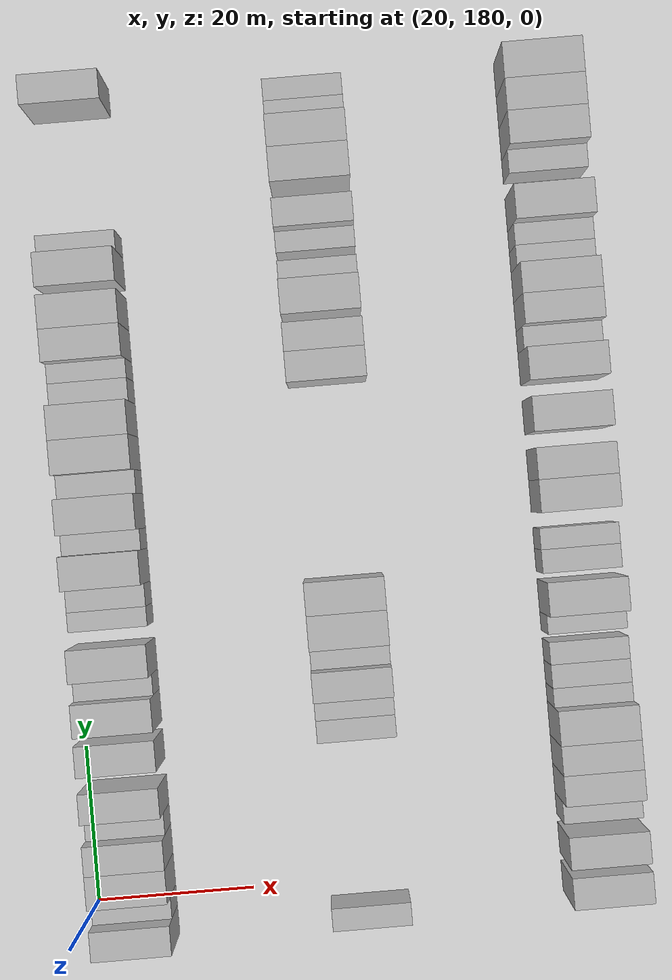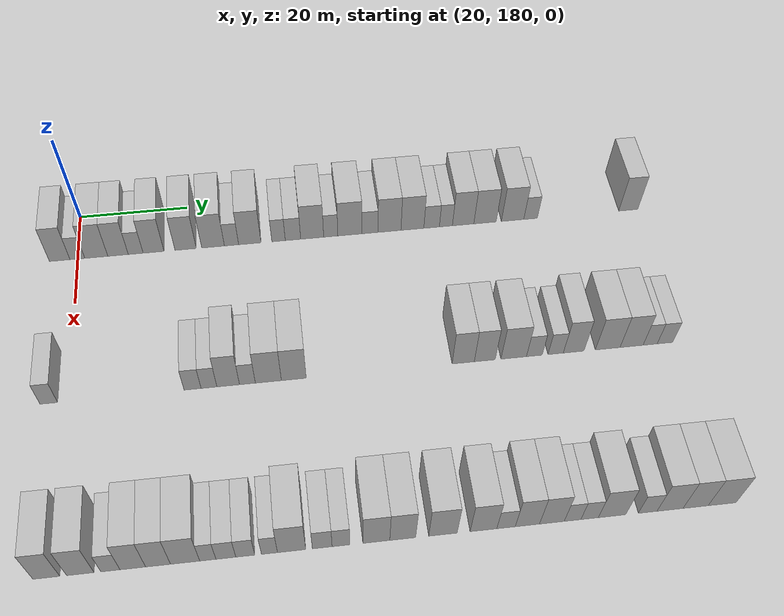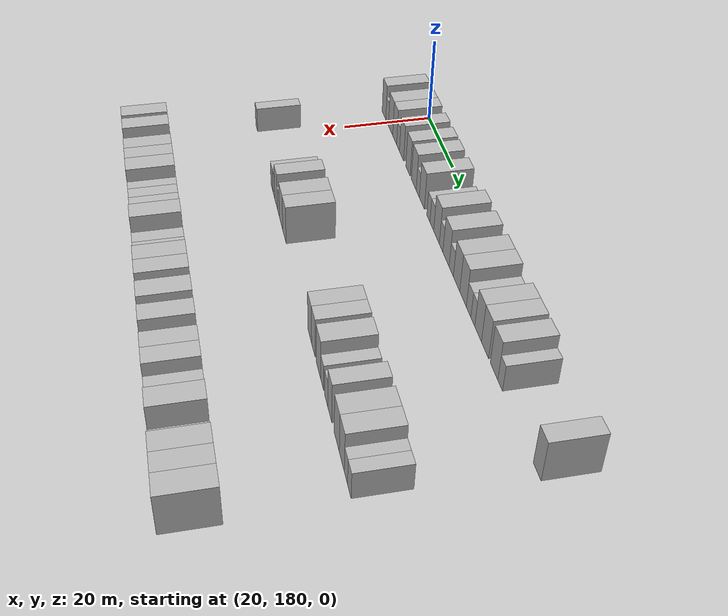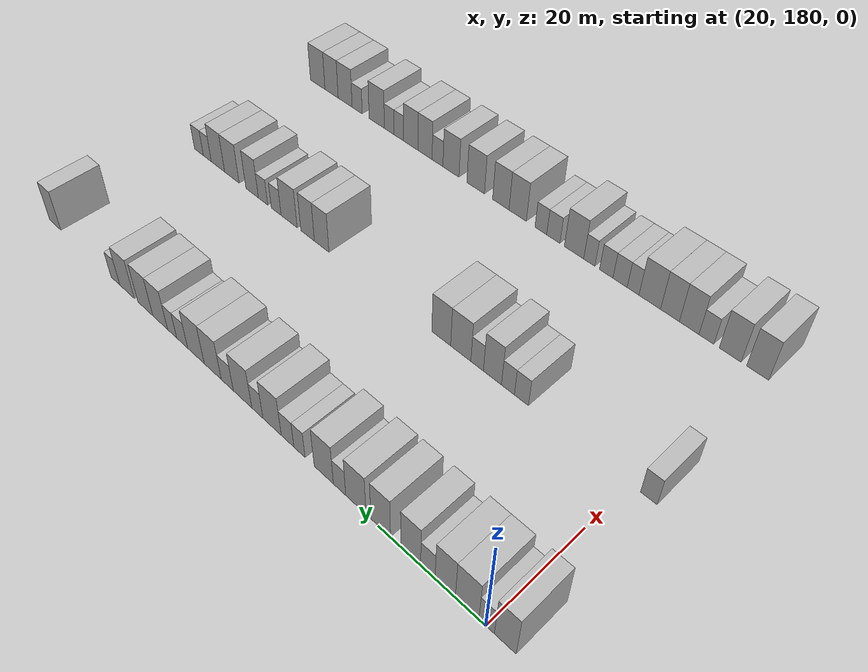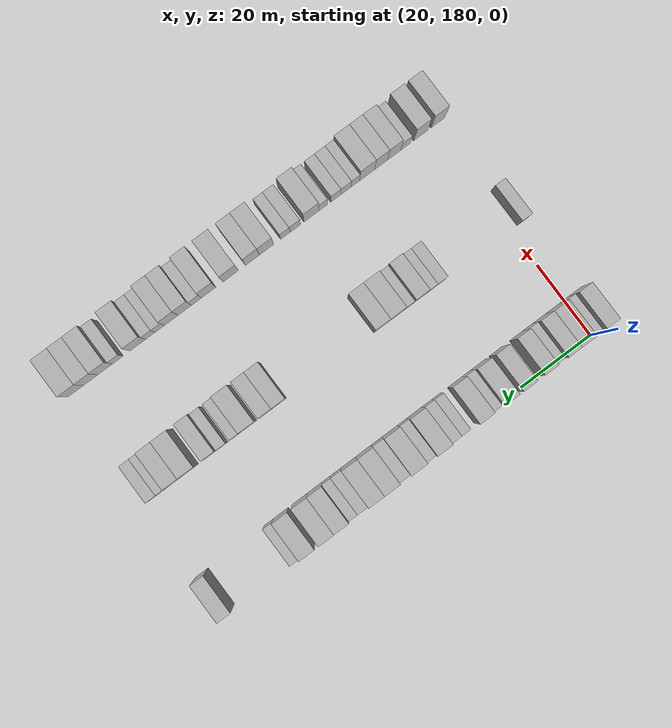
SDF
<sdf version="1.6">
 <world name="default">
  <model name="building_115">
   <static>1</static>
   <pose>25.0000 176.7372 0 0.000000 0.000000 0.000000</pose>
   <link name="link">
    <pose>0 0 4.50 0 0 0</pose>
    <collision name="collision"><geometry><box><size>10.0000 3.7053 9.0000</size></box></geometry></collision>
    <visual name="visual">
     <cast_shadows>0</cast_shadows>
     <geometry><box><size>10.0000 3.7053 9.0000</size></box></geometry>
     <material>
      <script>
       <uri>model://HANNAS_wall/materials/scripts</uri>
       <uri>model://HANNAS_wall/materials/textures</uri>
       <name>vrc/HANNAS_wall</name>
      </script>
     </material>
    </visual>
   </link>
  </model>
  <model name="building_116">
   <static>1</static>
   <pose>25.0000 179.9274 0 0.000000 0.000000 0.000000</pose>
   <link name="link">
    <pose>0 0 3.00 0 0 0</pose>
    <collision name="collision"><geometry><box><size>10.0000 2.6753 6.0000</size></box></geometry></collision>
    <visual name="visual">
     <cast_shadows>0</cast_shadows>
     <geometry><box><size>10.0000 2.6753 6.0000</size></box></geometry>
     <material>
      <script>
       <uri>model://HANNAS_wall/materials/scripts</uri>
       <uri>model://HANNAS_wall/materials/textures</uri>
       <name>vrc/HANNAS_wall</name>
      </script>
     </material>
    </visual>
   </link>
  </model>
  <model name="building_117">
   <static>1</static>
   <pose>25.0000 183.3475 0 0.000000 0.000000 0.000000</pose>
   <link name="link">
    <pose>0 0 4.50 0 0 0</pose>
    <collision name="collision"><geometry><box><size>10.0000 4.1648 9.0000</size></box></geometry></collision>
    <visual name="visual">
     <cast_shadows>0</cast_shadows>
     <geometry><box><size>10.0000 4.1648 9.0000</size></box></geometry>
     <material>
      <script>
       <uri>model://HANNAS_wall/materials/scripts</uri>
       <uri>model://HANNAS_wall/materials/textures</uri>
       <name>vrc/HANNAS_wall</name>
      </script>
     </material>
    </visual>
   </link>
  </model>
  <model name="building_118">
   <static>1</static>
   <pose>25.0000 187.2790 0 0.000000 0.000000 0.000000</pose>
   <link name="link">
    <pose>0 0 4.50 0 0 0</pose>
    <collision name="collision"><geometry><box><size>10.0000 3.6982 9.0000</size></box></geometry></collision>
    <visual name="visual">
     <cast_shadows>0</cast_shadows>
     <geometry><box><size>10.0000 3.6982 9.0000</size></box></geometry>
     <material>
      <script>
       <uri>model://HANNAS_wall/materials/scripts</uri>
       <uri>model://HANNAS_wall/materials/textures</uri>
       <name>vrc/HANNAS_wall</name>
      </script>
     </material>
    </visual>
   </link>
  </model>
  <model name="building_119">
   <static>1</static>
   <pose>25.0000 190.4783 0 0.000000 0.000000 0.000000</pose>
   <link name="link">
    <pose>0 0 3.00 0 0 0</pose>
    <collision name="collision"><geometry><box><size>10.0000 2.7004 6.0000</size></box></geometry></collision>
    <visual name="visual">
     <cast_shadows>0</cast_shadows>
     <geometry><box><size>10.0000 2.7004 6.0000</size></box></geometry>
     <material>
      <script>
       <uri>model://HANNAS_wall/materials/scripts</uri>
       <uri>model://HANNAS_wall/materials/textures</uri>
       <name>vrc/HANNAS_wall</name>
      </script>
     </material>
    </visual>
   </link>
  </model>
  <model name="building_120">
   <static>1</static>
   <pose>25.0000 193.7305 0 0.000000 0.000000 0.000000</pose>
   <link name="link">
    <pose>0 0 4.50 0 0 0</pose>
    <collision name="collision"><geometry><box><size>10.0000 3.8042 9.0000</size></box></geometry></collision>
    <visual name="visual">
     <cast_shadows>0</cast_shadows>
     <geometry><box><size>10.0000 3.8042 9.0000</size></box></geometry>
     <material>
      <script>
       <uri>model://HANNAS_wall/materials/scripts</uri>
       <uri>model://HANNAS_wall/materials/textures</uri>
       <name>vrc/HANNAS_wall</name>
      </script>
     </material>
    </visual>
   </link>
  </model>
  <model name="building_121">
   <static>1</static>
   <pose>25.0000 199.5805 0 0.000000 0.000000 0.000000</pose>
   <link name="link">
    <pose>0 0 4.50 0 0 0</pose>
    <collision name="collision"><geometry><box><size>10.0000 3.8957 9.0000</size></box></geometry></collision>
    <visual name="visual">
     <cast_shadows>0</cast_shadows>
     <geometry><box><size>10.0000 3.8957 9.0000</size></box></geometry>
     <material>
      <script>
       <uri>model://HANNAS_wall/materials/scripts</uri>
       <uri>model://HANNAS_wall/materials/textures</uri>
       <name>vrc/HANNAS_wall</name>
      </script>
     </material>
    </visual>
   </link>
  </model>
  <model name="building_122">
   <static>1</static>
   <pose>25.0000 204.6065 0 0.000000 0.000000 0.000000</pose>
   <link name="link">
    <pose>0 0 4.50 0 0 0</pose>
    <collision name="collision"><geometry><box><size>10.0000 4.1563 9.0000</size></box></geometry></collision>
    <visual name="visual">
     <cast_shadows>0</cast_shadows>
     <geometry><box><size>10.0000 4.1563 9.0000</size></box></geometry>
     <material>
      <script>
       <uri>model://HANNAS_wall/materials/scripts</uri>
       <uri>model://HANNAS_wall/materials/textures</uri>
       <name>vrc/HANNAS_wall</name>
      </script>
     </material>
    </visual>
   </link>
  </model>
  <model name="building_123">
   <static>1</static>
   <pose>25.0000 207.9919 0 0.000000 0.000000 0.000000</pose>
   <link name="link">
    <pose>0 0 3.00 0 0 0</pose>
    <collision name="collision"><geometry><box><size>10.0000 2.6144 6.0000</size></box></geometry></collision>
    <visual name="visual">
     <cast_shadows>0</cast_shadows>
     <geometry><box><size>10.0000 2.6144 6.0000</size></box></geometry>
     <material>
      <script>
       <uri>model://HANNAS_wall/materials/scripts</uri>
       <uri>model://HANNAS_wall/materials/textures</uri>
       <name>vrc/HANNAS_wall</name>
      </script>
     </material>
    </visual>
   </link>
  </model>
  <model name="building_124">
   <static>1</static>
   <pose>25.0000 211.3640 0 0.000000 0.000000 0.000000</pose>
   <link name="link">
    <pose>0 0 4.50 0 0 0</pose>
    <collision name="collision"><geometry><box><size>10.0000 4.1299 9.0000</size></box></geometry></collision>
    <visual name="visual">
     <cast_shadows>0</cast_shadows>
     <geometry><box><size>10.0000 4.1299 9.0000</size></box></geometry>
     <material>
      <script>
       <uri>model://HANNAS_wall/materials/scripts</uri>
       <uri>model://HANNAS_wall/materials/textures</uri>
       <name>vrc/HANNAS_wall</name>
      </script>
     </material>
    </visual>
   </link>
  </model>
  <model name="building_125">
   <static>1</static>
   <pose>25.0000 216.6712 0 0.000000 0.000000 0.000000</pose>
   <link name="link">
    <pose>0 0 3.00 0 0 0</pose>
    <collision name="collision"><geometry><box><size>10.0000 2.4845 6.0000</size></box></geometry></collision>
    <visual name="visual">
     <cast_shadows>0</cast_shadows>
     <geometry><box><size>10.0000 2.4845 6.0000</size></box></geometry>
     <material>
      <script>
       <uri>model://HANNAS_wall/materials/scripts</uri>
       <uri>model://HANNAS_wall/materials/textures</uri>
       <name>vrc/HANNAS_wall</name>
      </script>
     </material>
    </visual>
   </link>
  </model>
  <model name="building_126">
   <static>1</static>
   <pose>25.0000 219.3397 0 0.000000 0.000000 0.000000</pose>
   <link name="link">
    <pose>0 0 3.00 0 0 0</pose>
    <collision name="collision"><geometry><box><size>10.0000 2.8525 6.0000</size></box></geometry></collision>
    <visual name="visual">
     <cast_shadows>0</cast_shadows>
     <geometry><box><size>10.0000 2.8525 6.0000</size></box></geometry>
     <material>
      <script>
       <uri>model://HANNAS_wall/materials/scripts</uri>
       <uri>model://HANNAS_wall/materials/textures</uri>
       <name>vrc/HANNAS_wall</name>
      </script>
     </material>
    </visual>
   </link>
  </model>
  <model name="building_127">
   <static>1</static>
   <pose>25.0000 222.9014 0 0.000000 0.000000 0.000000</pose>
   <link name="link">
    <pose>0 0 4.50 0 0 0</pose>
    <collision name="collision"><geometry><box><size>10.0000 4.2708 9.0000</size></box></geometry></collision>
    <visual name="visual">
     <cast_shadows>0</cast_shadows>
     <geometry><box><size>10.0000 4.2708 9.0000</size></box></geometry>
     <material>
      <script>
       <uri>model://HANNAS_wall/materials/scripts</uri>
       <uri>model://HANNAS_wall/materials/textures</uri>
       <name>vrc/HANNAS_wall</name>
      </script>
     </material>
    </visual>
   </link>
  </model>
  <model name="building_128">
   <static>1</static>
   <pose>25.0000 226.3530 0 0.000000 0.000000 0.000000</pose>
   <link name="link">
    <pose>0 0 3.00 0 0 0</pose>
    <collision name="collision"><geometry><box><size>10.0000 2.6325 6.0000</size></box></geometry></collision>
    <visual name="visual">
     <cast_shadows>0</cast_shadows>
     <geometry><box><size>10.0000 2.6325 6.0000</size></box></geometry>
     <material>
      <script>
       <uri>model://HANNAS_wall/materials/scripts</uri>
       <uri>model://HANNAS_wall/materials/textures</uri>
       <name>vrc/HANNAS_wall</name>
      </script>
     </material>
    </visual>
   </link>
  </model>
  <model name="building_129">
   <static>1</static>
   <pose>25.0000 229.9183 0 0.000000 0.000000 0.000000</pose>
   <link name="link">
    <pose>0 0 4.50 0 0 0</pose>
    <collision name="collision"><geometry><box><size>10.0000 4.4980 9.0000</size></box></geometry></collision>
    <visual name="visual">
     <cast_shadows>0</cast_shadows>
     <geometry><box><size>10.0000 4.4980 9.0000</size></box></geometry>
     <material>
      <script>
       <uri>model://HANNAS_wall/materials/scripts</uri>
       <uri>model://HANNAS_wall/materials/textures</uri>
       <name>vrc/HANNAS_wall</name>
      </script>
     </material>
    </visual>
   </link>
  </model>
  <model name="building_130">
   <static>1</static>
   <pose>25.0000 233.6587 0 0.000000 0.000000 0.000000</pose>
   <link name="link">
    <pose>0 0 3.00 0 0 0</pose>
    <collision name="collision"><geometry><box><size>10.0000 2.9829 6.0000</size></box></geometry></collision>
    <visual name="visual">
     <cast_shadows>0</cast_shadows>
     <geometry><box><size>10.0000 2.9829 6.0000</size></box></geometry>
     <material>
      <script>
       <uri>model://HANNAS_wall/materials/scripts</uri>
       <uri>model://HANNAS_wall/materials/textures</uri>
       <name>vrc/HANNAS_wall</name>
      </script>
     </material>
    </visual>
   </link>
  </model>
  <model name="building_131">
   <static>1</static>
   <pose>25.0000 237.3212 0 0.000000 0.000000 0.000000</pose>
   <link name="link">
    <pose>0 0 4.50 0 0 0</pose>
    <collision name="collision"><geometry><box><size>10.0000 4.3421 9.0000</size></box></geometry></collision>
    <visual name="visual">
     <cast_shadows>0</cast_shadows>
     <geometry><box><size>10.0000 4.3421 9.0000</size></box></geometry>
     <material>
      <script>
       <uri>model://HANNAS_wall/materials/scripts</uri>
       <uri>model://HANNAS_wall/materials/textures</uri>
       <name>vrc/HANNAS_wall</name>
      </script>
     </material>
    </visual>
   </link>
  </model>
  <model name="building_132">
   <static>1</static>
   <pose>25.0000 241.6521 0 0.000000 0.000000 0.000000</pose>
   <link name="link">
    <pose>0 0 4.50 0 0 0</pose>
    <collision name="collision"><geometry><box><size>10.0000 4.3196 9.0000</size></box></geometry></collision>
    <visual name="visual">
     <cast_shadows>0</cast_shadows>
     <geometry><box><size>10.0000 4.3196 9.0000</size></box></geometry>
     <material>
      <script>
       <uri>model://HANNAS_wall/materials/scripts</uri>
       <uri>model://HANNAS_wall/materials/textures</uri>
       <name>vrc/HANNAS_wall</name>
      </script>
     </material>
    </visual>
   </link>
  </model>
  <model name="building_133">
   <static>1</static>
   <pose>25.0000 245.2762 0 0.000000 0.000000 0.000000</pose>
   <link name="link">
    <pose>0 0 3.00 0 0 0</pose>
    <collision name="collision"><geometry><box><size>10.0000 2.9286 6.0000</size></box></geometry></collision>
    <visual name="visual">
     <cast_shadows>0</cast_shadows>
     <geometry><box><size>10.0000 2.9286 6.0000</size></box></geometry>
     <material>
      <script>
       <uri>model://HANNAS_wall/materials/scripts</uri>
       <uri>model://HANNAS_wall/materials/textures</uri>
       <name>vrc/HANNAS_wall</name>
      </script>
     </material>
    </visual>
   </link>
  </model>
  <model name="building_134">
   <static>1</static>
   <pose>25.0000 247.9698 0 0.000000 0.000000 0.000000</pose>
   <link name="link">
    <pose>0 0 3.00 0 0 0</pose>
    <collision name="collision"><geometry><box><size>10.0000 2.4585 6.0000</size></box></geometry></collision>
    <visual name="visual">
     <cast_shadows>0</cast_shadows>
     <geometry><box><size>10.0000 2.4585 6.0000</size></box></geometry>
     <material>
      <script>
       <uri>model://HANNAS_wall/materials/scripts</uri>
       <uri>model://HANNAS_wall/materials/textures</uri>
       <name>vrc/HANNAS_wall</name>
      </script>
     </material>
    </visual>
   </link>
  </model>
  <model name="building_135">
   <static>1</static>
   <pose>25.0000 251.2332 0 0.000000 0.000000 0.000000</pose>
   <link name="link">
    <pose>0 0 4.50 0 0 0</pose>
    <collision name="collision"><geometry><box><size>10.0000 4.0683 9.0000</size></box></geometry></collision>
    <visual name="visual">
     <cast_shadows>0</cast_shadows>
     <geometry><box><size>10.0000 4.0683 9.0000</size></box></geometry>
     <material>
      <script>
       <uri>model://HANNAS_wall/materials/scripts</uri>
       <uri>model://HANNAS_wall/materials/textures</uri>
       <name>vrc/HANNAS_wall</name>
      </script>
     </material>
    </visual>
   </link>
  </model>
  <model name="building_136">
   <static>1</static>
   <pose>25.0000 255.3887 0 0.000000 0.000000 0.000000</pose>
   <link name="link">
    <pose>0 0 4.50 0 0 0</pose>
    <collision name="collision"><geometry><box><size>10.0000 4.2428 9.0000</size></box></geometry></collision>
    <visual name="visual">
     <cast_shadows>0</cast_shadows>
     <geometry><box><size>10.0000 4.2428 9.0000</size></box></geometry>
     <material>
      <script>
       <uri>model://HANNAS_wall/materials/scripts</uri>
       <uri>model://HANNAS_wall/materials/textures</uri>
       <name>vrc/HANNAS_wall</name>
      </script>
     </material>
    </visual>
   </link>
  </model>
  <model name="building_137">
   <static>1</static>
   <pose>25.0000 260.6428 0 0.000000 0.000000 0.000000</pose>
   <link name="link">
    <pose>0 0 4.50 0 0 0</pose>
    <collision name="collision"><geometry><box><size>10.0000 4.2654 9.0000</size></box></geometry></collision>
    <visual name="visual">
     <cast_shadows>0</cast_shadows>
     <geometry><box><size>10.0000 4.2654 9.0000</size></box></geometry>
     <material>
      <script>
       <uri>model://HANNAS_wall/materials/scripts</uri>
       <uri>model://HANNAS_wall/materials/textures</uri>
       <name>vrc/HANNAS_wall</name>
      </script>
     </material>
    </visual>
   </link>
  </model>
  <model name="building_138">
   <static>1</static>
   <pose>25.0000 264.0768 0 0.000000 0.000000 0.000000</pose>
   <link name="link">
    <pose>0 0 3.00 0 0 0</pose>
    <collision name="collision"><geometry><box><size>10.0000 2.6024 6.0000</size></box></geometry></collision>
    <visual name="visual">
     <cast_shadows>0</cast_shadows>
     <geometry><box><size>10.0000 2.6024 6.0000</size></box></geometry>
     <material>
      <script>
       <uri>model://HANNAS_wall/materials/scripts</uri>
       <uri>model://HANNAS_wall/materials/textures</uri>
       <name>vrc/HANNAS_wall</name>
      </script>
     </material>
    </visual>
   </link>
  </model>
  <model name="building_139">
   <static>1</static>
   <pose>25.0000 282.8961 0 0.000000 0.000000 0.000000</pose>
   <link name="link">
    <pose>0 0 4.50 0 0 0</pose>
    <collision name="collision"><geometry><box><size>10.0000 3.6788 9.0000</size></box></geometry></collision>
    <visual name="visual">
     <cast_shadows>0</cast_shadows>
     <geometry><box><size>10.0000 3.6788 9.0000</size></box></geometry>
     <material>
      <script>
       <uri>model://HANNAS_wall/materials/scripts</uri>
       <uri>model://HANNAS_wall/materials/textures</uri>
       <name>vrc/HANNAS_wall</name>
      </script>
     </material>
    </visual>
   </link>
  </model>
  <model name="building_252">
   <static>1</static>
   <pose>55.0000 176.6837 0 0.000000 0.000000 0.000000</pose>
   <link name="link">
    <pose>0 0 3.00 0 0 0</pose>
    <collision name="collision"><geometry><box><size>10.0000 2.8622 6.0000</size></box></geometry></collision>
    <visual name="visual">
     <cast_shadows>0</cast_shadows>
     <geometry><box><size>10.0000 2.8622 6.0000</size></box></geometry>
     <material>
      <script>
       <uri>model://HANNAS_wall/materials/scripts</uri>
       <uri>model://HANNAS_wall/materials/textures</uri>
       <name>vrc/HANNAS_wall</name>
      </script>
     </material>
    </visual>
   </link>
  </model>
  <model name="building_253">
   <static>1</static>
   <pose>55.0000 200.3405 0 0.000000 0.000000 0.000000</pose>
   <link name="link">
    <pose>0 0 3.00 0 0 0</pose>
    <collision name="collision"><geometry><box><size>10.0000 2.8171 6.0000</size></box></geometry></collision>
    <visual name="visual">
     <cast_shadows>0</cast_shadows>
     <geometry><box><size>10.0000 2.8171 6.0000</size></box></geometry>
     <material>
      <script>
       <uri>model://HANNAS_wall/materials/scripts</uri>
       <uri>model://HANNAS_wall/materials/textures</uri>
       <name>vrc/HANNAS_wall</name>
      </script>
     </material>
    </visual>
   </link>
  </model>
  <model name="building_254">
   <static>1</static>
   <pose>55.0000 203.0650 0 0.000000 0.000000 0.000000</pose>
   <link name="link">
    <pose>0 0 3.00 0 0 0</pose>
    <collision name="collision"><geometry><box><size>10.0000 2.6319 6.0000</size></box></geometry></collision>
    <visual name="visual">
     <cast_shadows>0</cast_shadows>
     <geometry><box><size>10.0000 2.6319 6.0000</size></box></geometry>
     <material>
      <script>
       <uri>model://HANNAS_wall/materials/scripts</uri>
       <uri>model://HANNAS_wall/materials/textures</uri>
       <name>vrc/HANNAS_wall</name>
      </script>
     </material>
    </visual>
   </link>
  </model>
  <model name="building_255">
   <static>1</static>
   <pose>55.0000 206.2601 0 0.000000 0.000000 0.000000</pose>
   <link name="link">
    <pose>0 0 4.50 0 0 0</pose>
    <collision name="collision"><geometry><box><size>10.0000 3.7583 9.0000</size></box></geometry></collision>
    <visual name="visual">
     <cast_shadows>0</cast_shadows>
     <geometry><box><size>10.0000 3.7583 9.0000</size></box></geometry>
     <material>
      <script>
       <uri>model://HANNAS_wall/materials/scripts</uri>
       <uri>model://HANNAS_wall/materials/textures</uri>
       <name>vrc/HANNAS_wall</name>
      </script>
     </material>
    </visual>
   </link>
  </model>
  <model name="building_256">
   <static>1</static>
   <pose>55.0000 209.4638 0 0.000000 0.000000 0.000000</pose>
   <link name="link">
    <pose>0 0 3.00 0 0 0</pose>
    <collision name="collision"><geometry><box><size>10.0000 2.6491 6.0000</size></box></geometry></collision>
    <visual name="visual">
     <cast_shadows>0</cast_shadows>
     <geometry><box><size>10.0000 2.6491 6.0000</size></box></geometry>
     <material>
      <script>
       <uri>model://HANNAS_wall/materials/scripts</uri>
       <uri>model://HANNAS_wall/materials/textures</uri>
       <name>vrc/HANNAS_wall</name>
      </script>
     </material>
    </visual>
   </link>
  </model>
  <model name="building_257">
   <static>1</static>
   <pose>55.0000 212.9736 0 0.000000 0.000000 0.000000</pose>
   <link name="link">
    <pose>0 0 4.50 0 0 0</pose>
    <collision name="collision"><geometry><box><size>10.0000 4.3704 9.0000</size></box></geometry></collision>
    <visual name="visual">
     <cast_shadows>0</cast_shadows>
     <geometry><box><size>10.0000 4.3704 9.0000</size></box></geometry>
     <material>
      <script>
       <uri>model://HANNAS_wall/materials/scripts</uri>
       <uri>model://HANNAS_wall/materials/textures</uri>
       <name>vrc/HANNAS_wall</name>
      </script>
     </material>
    </visual>
   </link>
  </model>
  <model name="building_258">
   <static>1</static>
   <pose>55.0000 217.2457 0 0.000000 0.000000 0.000000</pose>
   <link name="link">
    <pose>0 0 4.50 0 0 0</pose>
    <collision name="collision"><geometry><box><size>10.0000 4.1738 9.0000</size></box></geometry></collision>
    <visual name="visual">
     <cast_shadows>0</cast_shadows>
     <geometry><box><size>10.0000 4.1738 9.0000</size></box></geometry>
     <material>
      <script>
       <uri>model://HANNAS_wall/materials/scripts</uri>
       <uri>model://HANNAS_wall/materials/textures</uri>
       <name>vrc/HANNAS_wall</name>
      </script>
     </material>
    </visual>
   </link>
  </model>
  <model name="building_259">
   <static>1</static>
   <pose>55.0000 246.0511 0 0.000000 0.000000 0.000000</pose>
   <link name="link">
    <pose>0 0 4.50 0 0 0</pose>
    <collision name="collision"><geometry><box><size>10.0000 3.8123 9.0000</size></box></geometry></collision>
    <visual name="visual">
     <cast_shadows>0</cast_shadows>
     <geometry><box><size>10.0000 3.8123 9.0000</size></box></geometry>
     <material>
      <script>
       <uri>model://HANNAS_wall/materials/scripts</uri>
       <uri>model://HANNAS_wall/materials/textures</uri>
       <name>vrc/HANNAS_wall</name>
      </script>
     </material>
    </visual>
   </link>
  </model>
  <model name="building_260">
   <static>1</static>
   <pose>55.0000 249.7582 0 0.000000 0.000000 0.000000</pose>
   <link name="link">
    <pose>0 0 4.50 0 0 0</pose>
    <collision name="collision"><geometry><box><size>10.0000 3.6019 9.0000</size></box></geometry></collision>
    <visual name="visual">
     <cast_shadows>0</cast_shadows>
     <geometry><box><size>10.0000 3.6019 9.0000</size></box></geometry>
     <material>
      <script>
       <uri>model://HANNAS_wall/materials/scripts</uri>
       <uri>model://HANNAS_wall/materials/textures</uri>
       <name>vrc/HANNAS_wall</name>
      </script>
     </material>
    </visual>
   </link>
  </model>
  <model name="building_261">
   <static>1</static>
   <pose>55.0000 254.7657 0 0.000000 0.000000 0.000000</pose>
   <link name="link">
    <pose>0 0 4.50 0 0 0</pose>
    <collision name="collision"><geometry><box><size>10.0000 4.4130 9.0000</size></box></geometry></collision>
    <visual name="visual">
     <cast_shadows>0</cast_shadows>
     <geometry><box><size>10.0000 4.4130 9.0000</size></box></geometry>
     <material>
      <script>
       <uri>model://HANNAS_wall/materials/scripts</uri>
       <uri>model://HANNAS_wall/materials/textures</uri>
       <name>vrc/HANNAS_wall</name>
      </script>
     </material>
    </visual>
   </link>
  </model>
  <model name="building_262">
   <static>1</static>
   <pose>55.0000 258.3361 0 0.000000 0.000000 0.000000</pose>
   <link name="link">
    <pose>0 0 3.00 0 0 0</pose>
    <collision name="collision"><geometry><box><size>10.0000 2.7279 6.0000</size></box></geometry></collision>
    <visual name="visual">
     <cast_shadows>0</cast_shadows>
     <geometry><box><size>10.0000 2.7279 6.0000</size></box></geometry>
     <material>
      <script>
       <uri>model://HANNAS_wall/materials/scripts</uri>
       <uri>model://HANNAS_wall/materials/textures</uri>
       <name>vrc/HANNAS_wall</name>
      </script>
     </material>
    </visual>
   </link>
  </model>
  <model name="building_263">
   <static>1</static>
   <pose>55.0000 262.0332 0 0.000000 0.000000 0.000000</pose>
   <link name="link">
    <pose>0 0 3.00 0 0 0</pose>
    <collision name="collision"><geometry><box><size>10.0000 2.6662 6.0000</size></box></geometry></collision>
    <visual name="visual">
     <cast_shadows>0</cast_shadows>
     <geometry><box><size>10.0000 2.6662 6.0000</size></box></geometry>
     <material>
      <script>
       <uri>model://HANNAS_wall/materials/scripts</uri>
       <uri>model://HANNAS_wall/materials/textures</uri>
       <name>vrc/HANNAS_wall</name>
      </script>
     </material>
    </visual>
   </link>
  </model>
  <model name="building_264">
   <static>1</static>
   <pose>55.0000 265.1717 0 0.000000 0.000000 0.000000</pose>
   <link name="link">
    <pose>0 0 4.50 0 0 0</pose>
    <collision name="collision"><geometry><box><size>10.0000 3.6108 9.0000</size></box></geometry></collision>
    <visual name="visual">
     <cast_shadows>0</cast_shadows>
     <geometry><box><size>10.0000 3.6108 9.0000</size></box></geometry>
     <material>
      <script>
       <uri>model://HANNAS_wall/materials/scripts</uri>
       <uri>model://HANNAS_wall/materials/textures</uri>
       <name>vrc/HANNAS_wall</name>
      </script>
     </material>
    </visual>
   </link>
  </model>
  <model name="building_265">
   <static>1</static>
   <pose>55.0000 271.1438 0 0.000000 0.000000 0.000000</pose>
   <link name="link">
    <pose>0 0 4.50 0 0 0</pose>
    <collision name="collision"><geometry><box><size>10.0000 4.3335 9.0000</size></box></geometry></collision>
    <visual name="visual">
     <cast_shadows>0</cast_shadows>
     <geometry><box><size>10.0000 4.3335 9.0000</size></box></geometry>
     <material>
      <script>
       <uri>model://HANNAS_wall/materials/scripts</uri>
       <uri>model://HANNAS_wall/materials/textures</uri>
       <name>vrc/HANNAS_wall</name>
      </script>
     </material>
    </visual>
   </link>
  </model>
  <model name="building_266">
   <static>1</static>
   <pose>55.0000 275.3366 0 0.000000 0.000000 0.000000</pose>
   <link name="link">
    <pose>0 0 4.50 0 0 0</pose>
    <collision name="collision"><geometry><box><size>10.0000 4.0520 9.0000</size></box></geometry></collision>
    <visual name="visual">
     <cast_shadows>0</cast_shadows>
     <geometry><box><size>10.0000 4.0520 9.0000</size></box></geometry>
     <material>
      <script>
       <uri>model://HANNAS_wall/materials/scripts</uri>
       <uri>model://HANNAS_wall/materials/textures</uri>
       <name>vrc/HANNAS_wall</name>
      </script>
     </material>
    </visual>
   </link>
  </model>
  <model name="building_267">
   <static>1</static>
   <pose>55.0000 278.6022 0 0.000000 0.000000 0.000000</pose>
   <link name="link">
    <pose>0 0 3.00 0 0 0</pose>
    <collision name="collision"><geometry><box><size>10.0000 2.4792 6.0000</size></box></geometry></collision>
    <visual name="visual">
     <cast_shadows>0</cast_shadows>
     <geometry><box><size>10.0000 2.4792 6.0000</size></box></geometry>
     <material>
      <script>
       <uri>model://HANNAS_wall/materials/scripts</uri>
       <uri>model://HANNAS_wall/materials/textures</uri>
       <name>vrc/HANNAS_wall</name>
      </script>
     </material>
    </visual>
   </link>
  </model>
  <model name="building_268">
   <static>1</static>
   <pose>55.0000 281.2174 0 0.000000 0.000000 0.000000</pose>
   <link name="link">
    <pose>0 0 3.00 0 0 0</pose>
    <collision name="collision"><geometry><box><size>10.0000 2.7513 6.0000</size></box></geometry></collision>
    <visual name="visual">
     <cast_shadows>0</cast_shadows>
     <geometry><box><size>10.0000 2.7513 6.0000</size></box></geometry>
     <material>
      <script>
       <uri>model://HANNAS_wall/materials/scripts</uri>
       <uri>model://HANNAS_wall/materials/textures</uri>
       <name>vrc/HANNAS_wall</name>
      </script>
     </material>
    </visual>
   </link>
  </model>
  <model name="building_388">
   <static>1</static>
   <pose>85.0000 178.2440 0 0.000000 0.000000 0.000000</pose>
   <link name="link">
    <pose>0 0 4.50 0 0 0</pose>
    <collision name="collision"><geometry><box><size>10.0000 3.9330 9.0000</size></box></geometry></collision>
    <visual name="visual">
     <cast_shadows>0</cast_shadows>
     <geometry><box><size>10.0000 3.9330 9.0000</size></box></geometry>
     <material>
      <script>
       <uri>model://HANNAS_wall/materials/scripts</uri>
       <uri>model://HANNAS_wall/materials/textures</uri>
       <name>vrc/HANNAS_wall</name>
      </script>
     </material>
    </visual>
   </link>
  </model>
  <model name="building_389">
   <static>1</static>
   <pose>85.0000 183.2249 0 0.000000 0.000000 0.000000</pose>
   <link name="link">
    <pose>0 0 4.50 0 0 0</pose>
    <collision name="collision"><geometry><box><size>10.0000 4.0288 9.0000</size></box></geometry></collision>
    <visual name="visual">
     <cast_shadows>0</cast_shadows>
     <geometry><box><size>10.0000 4.0288 9.0000</size></box></geometry>
     <material>
      <script>
       <uri>model://HANNAS_wall/materials/scripts</uri>
       <uri>model://HANNAS_wall/materials/textures</uri>
       <name>vrc/HANNAS_wall</name>
      </script>
     </material>
    </visual>
   </link>
  </model>
  <model name="building_390">
   <static>1</static>
   <pose>85.0000 187.6495 0 0.000000 0.000000 0.000000</pose>
   <link name="link">
    <pose>0 0 3.00 0 0 0</pose>
    <collision name="collision"><geometry><box><size>10.0000 2.8203 6.0000</size></box></geometry></collision>
    <visual name="visual">
     <cast_shadows>0</cast_shadows>
     <geometry><box><size>10.0000 2.8203 6.0000</size></box></geometry>
     <material>
      <script>
       <uri>model://HANNAS_wall/materials/scripts</uri>
       <uri>model://HANNAS_wall/materials/textures</uri>
       <name>vrc/HANNAS_wall</name>
      </script>
     </material>
    </visual>
   </link>
  </model>
  <model name="building_391">
   <static>1</static>
   <pose>85.0000 190.9513 0 0.000000 0.000000 0.000000</pose>
   <link name="link">
    <pose>0 0 4.50 0 0 0</pose>
    <collision name="collision"><geometry><box><size>10.0000 3.7833 9.0000</size></box></geometry></collision>
    <visual name="visual">
     <cast_shadows>0</cast_shadows>
     <geometry><box><size>10.0000 3.7833 9.0000</size></box></geometry>
     <material>
      <script>
       <uri>model://HANNAS_wall/materials/scripts</uri>
       <uri>model://HANNAS_wall/materials/textures</uri>
       <name>vrc/HANNAS_wall</name>
      </script>
     </material>
    </visual>
   </link>
  </model>
  <model name="building_392">
   <static>1</static>
   <pose>85.0000 194.6922 0 0.000000 0.000000 0.000000</pose>
   <link name="link">
    <pose>0 0 4.50 0 0 0</pose>
    <collision name="collision"><geometry><box><size>10.0000 3.6984 9.0000</size></box></geometry></collision>
    <visual name="visual">
     <cast_shadows>0</cast_shadows>
     <geometry><box><size>10.0000 3.6984 9.0000</size></box></geometry>
     <material>
      <script>
       <uri>model://HANNAS_wall/materials/scripts</uri>
       <uri>model://HANNAS_wall/materials/textures</uri>
       <name>vrc/HANNAS_wall</name>
      </script>
     </material>
    </visual>
   </link>
  </model>
  <model name="building_393">
   <static>1</static>
   <pose>85.0000 198.7183 0 0.000000 0.000000 0.000000</pose>
   <link name="link">
    <pose>0 0 4.50 0 0 0</pose>
    <collision name="collision"><geometry><box><size>10.0000 4.3537 9.0000</size></box></geometry></collision>
    <visual name="visual">
     <cast_shadows>0</cast_shadows>
     <geometry><box><size>10.0000 4.3537 9.0000</size></box></geometry>
     <material>
      <script>
       <uri>model://HANNAS_wall/materials/scripts</uri>
       <uri>model://HANNAS_wall/materials/textures</uri>
       <name>vrc/HANNAS_wall</name>
      </script>
     </material>
    </visual>
   </link>
  </model>
  <model name="building_394">
   <static>1</static>
   <pose>85.0000 202.1014 0 0.000000 0.000000 0.000000</pose>
   <link name="link">
    <pose>0 0 3.00 0 0 0</pose>
    <collision name="collision"><geometry><box><size>10.0000 2.4125 6.0000</size></box></geometry></collision>
    <visual name="visual">
     <cast_shadows>0</cast_shadows>
     <geometry><box><size>10.0000 2.4125 6.0000</size></box></geometry>
     <material>
      <script>
       <uri>model://HANNAS_wall/materials/scripts</uri>
       <uri>model://HANNAS_wall/materials/textures</uri>
       <name>vrc/HANNAS_wall</name>
      </script>
     </material>
    </visual>
   </link>
  </model>
  <model name="building_395">
   <static>1</static>
   <pose>85.0000 204.7954 0 0.000000 0.000000 0.000000</pose>
   <link name="link">
    <pose>0 0 3.00 0 0 0</pose>
    <collision name="collision"><geometry><box><size>10.0000 2.9755 6.0000</size></box></geometry></collision>
    <visual name="visual">
     <cast_shadows>0</cast_shadows>
     <geometry><box><size>10.0000 2.9755 6.0000</size></box></geometry>
     <material>
      <script>
       <uri>model://HANNAS_wall/materials/scripts</uri>
       <uri>model://HANNAS_wall/materials/textures</uri>
       <name>vrc/HANNAS_wall</name>
      </script>
     </material>
    </visual>
   </link>
  </model>
  <model name="building_396">
   <static>1</static>
   <pose>85.0000 207.7035 0 0.000000 0.000000 0.000000</pose>
   <link name="link">
    <pose>0 0 3.00 0 0 0</pose>
    <collision name="collision"><geometry><box><size>10.0000 2.8408 6.0000</size></box></geometry></collision>
    <visual name="visual">
     <cast_shadows>0</cast_shadows>
     <geometry><box><size>10.0000 2.8408 6.0000</size></box></geometry>
     <material>
      <script>
       <uri>model://HANNAS_wall/materials/scripts</uri>
       <uri>model://HANNAS_wall/materials/textures</uri>
       <name>vrc/HANNAS_wall</name>
      </script>
     </material>
    </visual>
   </link>
  </model>
  <model name="building_397">
   <static>1</static>
   <pose>85.0000 211.3335 0 0.000000 0.000000 0.000000</pose>
   <link name="link">
    <pose>0 0 3.00 0 0 0</pose>
    <collision name="collision"><geometry><box><size>10.0000 2.4192 6.0000</size></box></geometry></collision>
    <visual name="visual">
     <cast_shadows>0</cast_shadows>
     <geometry><box><size>10.0000 2.4192 6.0000</size></box></geometry>
     <material>
      <script>
       <uri>model://HANNAS_wall/materials/scripts</uri>
       <uri>model://HANNAS_wall/materials/textures</uri>
       <name>vrc/HANNAS_wall</name>
      </script>
     </material>
    </visual>
   </link>
  </model>
  <model name="building_398">
   <static>1</static>
   <pose>85.0000 214.6740 0 0.000000 0.000000 0.000000</pose>
   <link name="link">
    <pose>0 0 4.50 0 0 0</pose>
    <collision name="collision"><geometry><box><size>10.0000 4.2617 9.0000</size></box></geometry></collision>
    <visual name="visual">
     <cast_shadows>0</cast_shadows>
     <geometry><box><size>10.0000 4.2617 9.0000</size></box></geometry>
     <material>
      <script>
       <uri>model://HANNAS_wall/materials/scripts</uri>
       <uri>model://HANNAS_wall/materials/textures</uri>
       <name>vrc/HANNAS_wall</name>
      </script>
     </material>
    </visual>
   </link>
  </model>
  <model name="building_399">
   <static>1</static>
   <pose>85.0000 219.2961 0 0.000000 0.000000 0.000000</pose>
   <link name="link">
    <pose>0 0 3.00 0 0 0</pose>
    <collision name="collision"><geometry><box><size>10.0000 2.9826 6.0000</size></box></geometry></collision>
    <visual name="visual">
     <cast_shadows>0</cast_shadows>
     <geometry><box><size>10.0000 2.9826 6.0000</size></box></geometry>
     <material>
      <script>
       <uri>model://HANNAS_wall/materials/scripts</uri>
       <uri>model://HANNAS_wall/materials/textures</uri>
       <name>vrc/HANNAS_wall</name>
      </script>
     </material>
    </visual>
   </link>
  </model>
  <model name="building_400">
   <static>1</static>
   <pose>85.0000 222.1322 0 0.000000 0.000000 0.000000</pose>
   <link name="link">
    <pose>0 0 3.00 0 0 0</pose>
    <collision name="collision"><geometry><box><size>10.0000 2.6895 6.0000</size></box></geometry></collision>
    <visual name="visual">
     <cast_shadows>0</cast_shadows>
     <geometry><box><size>10.0000 2.6895 6.0000</size></box></geometry>
     <material>
      <script>
       <uri>model://HANNAS_wall/materials/scripts</uri>
       <uri>model://HANNAS_wall/materials/textures</uri>
       <name>vrc/HANNAS_wall</name>
      </script>
     </material>
    </visual>
   </link>
  </model>
  <model name="building_401">
   <static>1</static>
   <pose>85.0000 227.5233 0 0.000000 0.000000 0.000000</pose>
   <link name="link">
    <pose>0 0 4.50 0 0 0</pose>
    <collision name="collision"><geometry><box><size>10.0000 4.0927 9.0000</size></box></geometry></collision>
    <visual name="visual">
     <cast_shadows>0</cast_shadows>
     <geometry><box><size>10.0000 4.0927 9.0000</size></box></geometry>
     <material>
      <script>
       <uri>model://HANNAS_wall/materials/scripts</uri>
       <uri>model://HANNAS_wall/materials/textures</uri>
       <name>vrc/HANNAS_wall</name>
      </script>
     </material>
    </visual>
   </link>
  </model>
  <model name="building_402">
   <static>1</static>
   <pose>85.0000 231.5520 0 0.000000 0.000000 0.000000</pose>
   <link name="link">
    <pose>0 0 4.50 0 0 0</pose>
    <collision name="collision"><geometry><box><size>10.0000 3.9646 9.0000</size></box></geometry></collision>
    <visual name="visual">
     <cast_shadows>0</cast_shadows>
     <geometry><box><size>10.0000 3.9646 9.0000</size></box></geometry>
     <material>
      <script>
       <uri>model://HANNAS_wall/materials/scripts</uri>
       <uri>model://HANNAS_wall/materials/textures</uri>
       <name>vrc/HANNAS_wall</name>
      </script>
     </material>
    </visual>
   </link>
  </model>
  <model name="building_403">
   <static>1</static>
   <pose>85.0000 237.7210 0 0.000000 0.000000 0.000000</pose>
   <link name="link">
    <pose>0 0 4.50 0 0 0</pose>
    <collision name="collision"><geometry><box><size>10.0000 4.3734 9.0000</size></box></geometry></collision>
    <visual name="visual">
     <cast_shadows>0</cast_shadows>
     <geometry><box><size>10.0000 4.3734 9.0000</size></box></geometry>
     <material>
      <script>
       <uri>model://HANNAS_wall/materials/scripts</uri>
       <uri>model://HANNAS_wall/materials/textures</uri>
       <name>vrc/HANNAS_wall</name>
      </script>
     </material>
    </visual>
   </link>
  </model>
  <model name="building_404">
   <static>1</static>
   <pose>85.0000 243.9744 0 0.000000 0.000000 0.000000</pose>
   <link name="link">
    <pose>0 0 4.50 0 0 0</pose>
    <collision name="collision"><geometry><box><size>10.0000 4.1334 9.0000</size></box></geometry></collision>
    <visual name="visual">
     <cast_shadows>0</cast_shadows>
     <geometry><box><size>10.0000 4.1334 9.0000</size></box></geometry>
     <material>
      <script>
       <uri>model://HANNAS_wall/materials/scripts</uri>
       <uri>model://HANNAS_wall/materials/textures</uri>
       <name>vrc/HANNAS_wall</name>
      </script>
     </material>
    </visual>
   </link>
  </model>
  <model name="building_405">
   <static>1</static>
   <pose>85.0000 247.4673 0 0.000000 0.000000 0.000000</pose>
   <link name="link">
    <pose>0 0 3.00 0 0 0</pose>
    <collision name="collision"><geometry><box><size>10.0000 2.8525 6.0000</size></box></geometry></collision>
    <visual name="visual">
     <cast_shadows>0</cast_shadows>
     <geometry><box><size>10.0000 2.8525 6.0000</size></box></geometry>
     <material>
      <script>
       <uri>model://HANNAS_wall/materials/scripts</uri>
       <uri>model://HANNAS_wall/materials/textures</uri>
       <name>vrc/HANNAS_wall</name>
      </script>
     </material>
    </visual>
   </link>
  </model>
  <model name="building_406">
   <static>1</static>
   <pose>85.0000 250.7862 0 0.000000 0.000000 0.000000</pose>
   <link name="link">
    <pose>0 0 4.50 0 0 0</pose>
    <collision name="collision"><geometry><box><size>10.0000 3.7852 9.0000</size></box></geometry></collision>
    <visual name="visual">
     <cast_shadows>0</cast_shadows>
     <geometry><box><size>10.0000 3.7852 9.0000</size></box></geometry>
     <material>
      <script>
       <uri>model://HANNAS_wall/materials/scripts</uri>
       <uri>model://HANNAS_wall/materials/textures</uri>
       <name>vrc/HANNAS_wall</name>
      </script>
     </material>
    </visual>
   </link>
  </model>
  <model name="building_407">
   <static>1</static>
   <pose>85.0000 254.6112 0 0.000000 0.000000 0.000000</pose>
   <link name="link">
    <pose>0 0 4.50 0 0 0</pose>
    <collision name="collision"><geometry><box><size>10.0000 3.8647 9.0000</size></box></geometry></collision>
    <visual name="visual">
     <cast_shadows>0</cast_shadows>
     <geometry><box><size>10.0000 3.8647 9.0000</size></box></geometry>
     <material>
      <script>
       <uri>model://HANNAS_wall/materials/scripts</uri>
       <uri>model://HANNAS_wall/materials/textures</uri>
       <name>vrc/HANNAS_wall</name>
      </script>
     </material>
    </visual>
   </link>
  </model>
  <model name="building_408">
   <static>1</static>
   <pose>85.0000 257.8457 0 0.000000 0.000000 0.000000</pose>
   <link name="link">
    <pose>0 0 3.00 0 0 0</pose>
    <collision name="collision"><geometry><box><size>10.0000 2.6044 6.0000</size></box></geometry></collision>
    <visual name="visual">
     <cast_shadows>0</cast_shadows>
     <geometry><box><size>10.0000 2.6044 6.0000</size></box></geometry>
     <material>
      <script>
       <uri>model://HANNAS_wall/materials/scripts</uri>
       <uri>model://HANNAS_wall/materials/textures</uri>
       <name>vrc/HANNAS_wall</name>
      </script>
     </material>
    </visual>
   </link>
  </model>
  <model name="building_409">
   <static>1</static>
   <pose>85.0000 260.5120 0 0.000000 0.000000 0.000000</pose>
   <link name="link">
    <pose>0 0 3.00 0 0 0</pose>
    <collision name="collision"><geometry><box><size>10.0000 2.7281 6.0000</size></box></geometry></collision>
    <visual name="visual">
     <cast_shadows>0</cast_shadows>
     <geometry><box><size>10.0000 2.7281 6.0000</size></box></geometry>
     <material>
      <script>
       <uri>model://HANNAS_wall/materials/scripts</uri>
       <uri>model://HANNAS_wall/materials/textures</uri>
       <name>vrc/HANNAS_wall</name>
      </script>
     </material>
    </visual>
   </link>
  </model>
  <model name="building_410">
   <static>1</static>
   <pose>85.0000 264.0359 0 0.000000 0.000000 0.000000</pose>
   <link name="link">
    <pose>0 0 4.50 0 0 0</pose>
    <collision name="collision"><geometry><box><size>10.0000 4.3197 9.0000</size></box></geometry></collision>
    <visual name="visual">
     <cast_shadows>0</cast_shadows>
     <geometry><box><size>10.0000 4.3197 9.0000</size></box></geometry>
     <material>
      <script>
       <uri>model://HANNAS_wall/materials/scripts</uri>
       <uri>model://HANNAS_wall/materials/textures</uri>
       <name>vrc/HANNAS_wall</name>
      </script>
     </material>
    </visual>
   </link>
  </model>
  <model name="building_411">
   <static>1</static>
   <pose>85.0000 269.6705 0 0.000000 0.000000 0.000000</pose>
   <link name="link">
    <pose>0 0 3.00 0 0 0</pose>
    <collision name="collision"><geometry><box><size>10.0000 2.9494 6.0000</size></box></geometry></collision>
    <visual name="visual">
     <cast_shadows>0</cast_shadows>
     <geometry><box><size>10.0000 2.9494 6.0000</size></box></geometry>
     <material>
      <script>
       <uri>model://HANNAS_wall/materials/scripts</uri>
       <uri>model://HANNAS_wall/materials/textures</uri>
       <name>vrc/HANNAS_wall</name>
      </script>
     </material>
    </visual>
   </link>
  </model>
  <model name="building_412">
   <static>1</static>
   <pose>85.0000 273.2123 0 0.000000 0.000000 0.000000</pose>
   <link name="link">
    <pose>0 0 4.50 0 0 0</pose>
    <collision name="collision"><geometry><box><size>10.0000 4.1343 9.0000</size></box></geometry></collision>
    <visual name="visual">
     <cast_shadows>0</cast_shadows>
     <geometry><box><size>10.0000 4.1343 9.0000</size></box></geometry>
     <material>
      <script>
       <uri>model://HANNAS_wall/materials/scripts</uri>
       <uri>model://HANNAS_wall/materials/textures</uri>
       <name>vrc/HANNAS_wall</name>
      </script>
     </material>
    </visual>
   </link>
  </model>
  <model name="building_413">
   <static>1</static>
   <pose>85.0000 277.2776 0 0.000000 0.000000 0.000000</pose>
   <link name="link">
    <pose>0 0 4.50 0 0 0</pose>
    <collision name="collision"><geometry><box><size>10.0000 3.9963 9.0000</size></box></geometry></collision>
    <visual name="visual">
     <cast_shadows>0</cast_shadows>
     <geometry><box><size>10.0000 3.9963 9.0000</size></box></geometry>
     <material>
      <script>
       <uri>model://HANNAS_wall/materials/scripts</uri>
       <uri>model://HANNAS_wall/materials/textures</uri>
       <name>vrc/HANNAS_wall</name>
      </script>
     </material>
    </visual>
   </link>
  </model>
  <model name="building_414">
   <static>1</static>
   <pose>85.0000 281.5087 0 0.000000 0.000000 0.000000</pose>
   <link name="link">
    <pose>0 0 4.50 0 0 0</pose>
    <collision name="collision"><geometry><box><size>10.0000 4.4660 9.0000</size></box></geometry></collision>
    <visual name="visual">
     <cast_shadows>0</cast_shadows>
     <geometry><box><size>10.0000 4.4660 9.0000</size></box></geometry>
     <material>
      <script>
       <uri>model://HANNAS_wall/materials/scripts</uri>
       <uri>model://HANNAS_wall/materials/textures</uri>
       <name>vrc/HANNAS_wall</name>
      </script>
     </material>
    </visual>
   </link>
  </model>
 </world>
</sdf>
